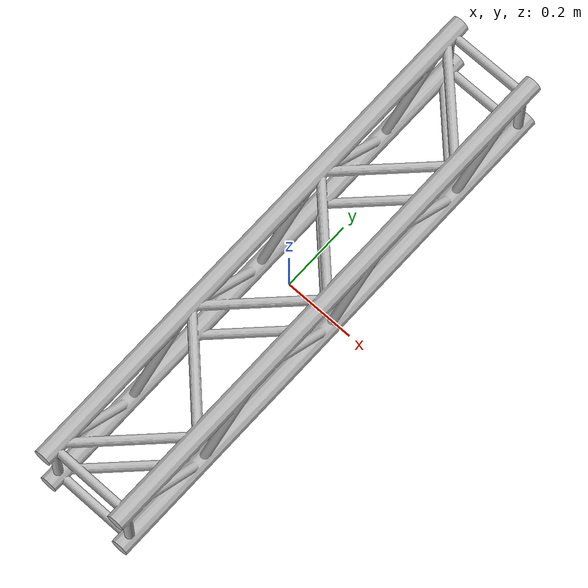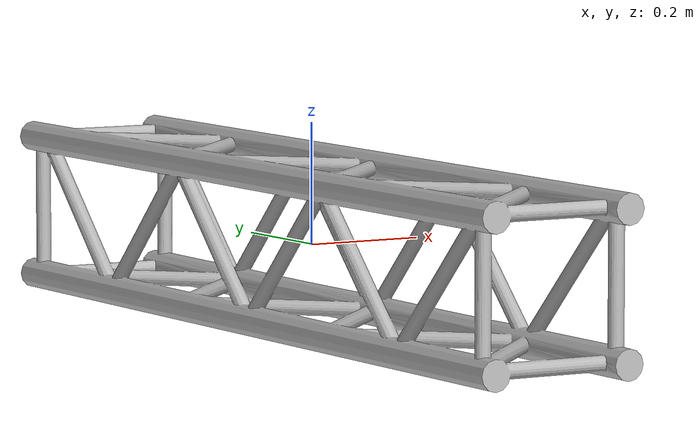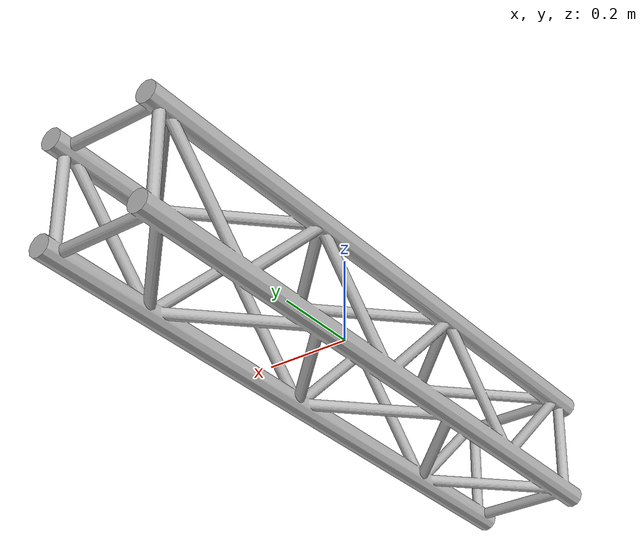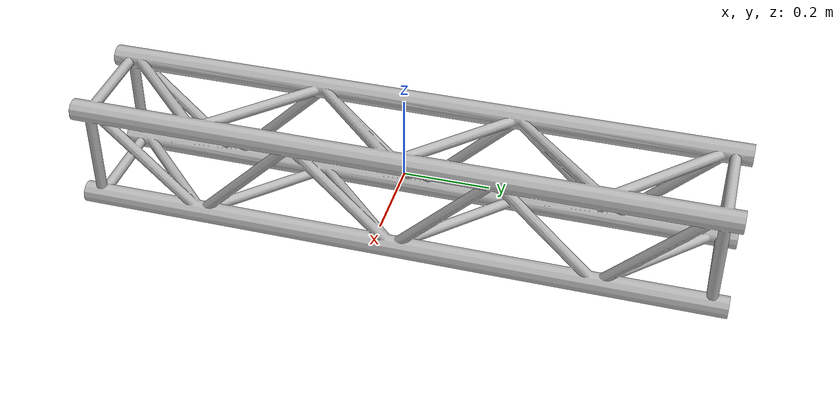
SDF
<?xml version="1.0" ?>
<sdf version="1.5">
  <model name="truss">
    <static>true</static>
    <link name="link">
      <inertial>
        <mass>20.7307</mass>
        <inertia>
          <ixx>4.7978</ixx>
          <ixy>0.0</ixy>
          <ixz>0.0</ixz>
          <iyy>0.4699</iyy>
          <iyz>-0.002</iyz>
          <izz>4.7978</izz>
        </inertia>
      </inertial>
      <collision name="collision">
        <geometry>
          <mesh>
            <uri>model://models/truss/meshes/truss.dae</uri>
          </mesh>
        </geometry>
        <surface>
          <bounce>
            <restitution_coefficient>0.0</restitution_coefficient>
            <threshold>100000</threshold>
          </bounce>
          <friction>
            <ode>
              <mu>10</mu>
              <mu2>10</mu2>
            </ode>
          </friction>
        </surface>
      </collision>
      <visual name="visual">
        <geometry>
          <mesh>
            <uri>model://models/truss//meshes/truss.dae</uri>
          </mesh>
        </geometry>
      </visual>
    </link>
  </model>
</sdf>
